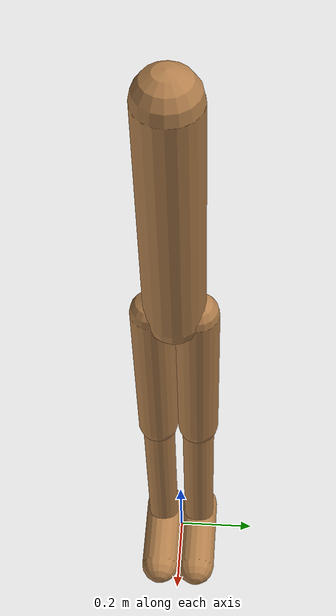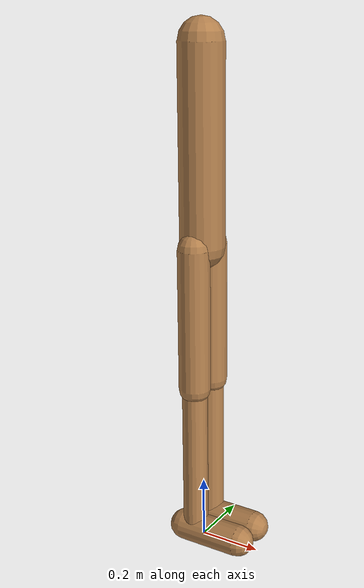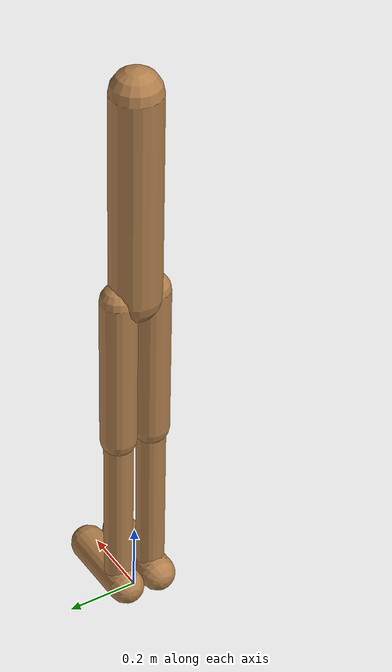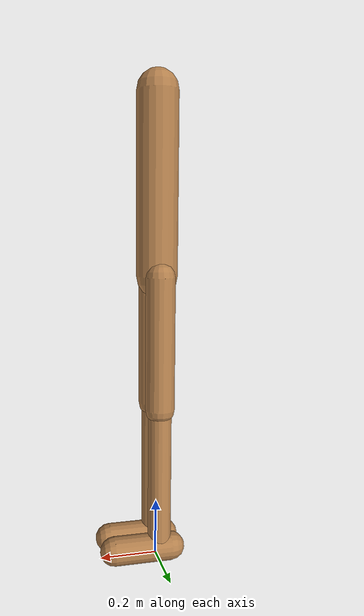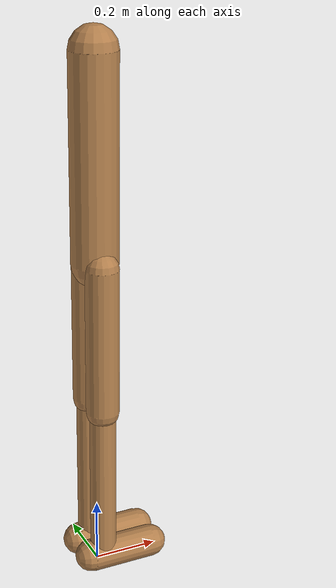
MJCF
<mujoco model="planar walker">
  <compiler angle="radian"/>

  <asset>
    <material name="self" rgba=".7 .5 .3 1"/>
  </asset>

  <default>
    <joint damping=".1" armature="0.01" limited="true" solimplimit="0 .99 .01"/>
    <geom contype="1" conaffinity="0" friction=".7 .1 .1"/>
    <motor ctrlrange="-1 1" ctrllimited="true"/>
    <site size="0.01"/>
    <default class="walker">
      <geom material="self" type="capsule"/>
      <joint axis="0 -1 0"/>
    </default>
    <default class="rangefinder">
      <site type="capsule" size=".05 .5" rgba="1 0 0 .4" group="4"/>
    </default>
  </default>

  <worldbody>
    <camera name="sideon" pos="0 -3 3" euler="0.7854 0 0" mode="trackcom"/>
    <camera name="float_far"  pos="-4 0 2" xyaxes="0 -1 0 .5 0 1" mode="trackcom" fovy="90"/>
    <body name="torso" pos="0 0 1.3" childclass="walker">

      <camera name="floating"  pos="-2 0 1" xyaxes="0 -1 0 .5 0 1" mode="trackcom" fovy="90"/>
      <camera name="egocentric"  pos=".07 0 .2" xyaxes="0 -1 0 0 0 1" fovy="90"/>

      <site name="torso_touch" type="box" size="0.08 0.08 0.31" rgba="0 0 1 1" group="4"/>
      <geom name="torso" size="0.07 0.3"/>
      <site name="torso_site" size="0.05" rgba="1 0 0 1"/>

      <site name="rf_xp" class="rangefinder" pos="0.07 0 0.2" zaxis="1 0 0"/>
      <site name="rf_xpd_10" class="rangefinder" pos="0.07 0 0.2" xyaxes="-1 0 -5.6713 0 1 0"/>  <!-- 10 degree -->
      <site name="rf_xpd_20" class="rangefinder" pos="0.07 0 0.2" xyaxes="-1 0 -2.7475 0 1 0"/>  <!-- 20 degree -->
      <site name="rf_xpd_30" class="rangefinder" pos="0.07 0 0.2" xyaxes="-1 0 -1.7321 0 1 0"/>  <!-- 30 degree -->
      <site name="rf_xpd_40" class="rangefinder" pos="0.07 0 0.2" xyaxes="-1 0 -1.1918 0 1 0"/>  <!-- 40 degree -->
      <site name="rf_xpd_50" class="rangefinder" pos="0.07 0 0.2" xyaxes="-1 0 -0.8391 0 1 0"/>  <!-- 50 degree -->
      <site name="rf_xpd_60" class="rangefinder" pos="0.07 0 0.2" xyaxes="-1 0 -0.5774 0 1 0"/>  <!-- 60 degree -->

      <body name="right_thigh" pos="0 -.05 -0.3">
        <joint name="right_hip" range="-0.34907 1.74533"/>  <!-- range = [-20 deg, 100 deg] -->
        <geom name="right_thigh" pos="0 0 -0.225" size="0.05 0.225"/>
        <body name="right_leg" pos="0 0 -0.7">
          <joint name="right_knee" pos="0 0 0.25" range="-2.61799 0"/>  <!-- range = [-150 deg, 0 deg] -->
          <geom name="right_leg" size="0.04 0.25"/>
          <body name="right_foot" pos="0.06 0 -0.25">
            <joint name="right_ankle" pos="-0.06 0 0" range="-0.78540 0.78540"/>  <!-- range = [-45 deg, 45 deg] -->
            <geom name="right_foot" zaxis="1 0 0" size="0.05 0.1"/>
          </body>
        </body>
      </body>
      <body name="left_thigh" pos="0 .05 -0.3" >
        <joint name="left_hip" range="-0.34907 1.74533"/>  <!-- range = [-20 deg, 100 deg] -->
        <geom name="left_thigh" pos="0 0 -0.225" size="0.05 0.225"/>
        <body name="left_leg" pos="0 0 -0.7">
          <joint name="left_knee" pos="0 0 0.25" range="-2.61799 0"/>  <!-- range = [-150 deg, 0 deg] -->
          <geom name="left_leg" size="0.04 0.25"/>
          <body name="left_foot" pos="0.06 0 -0.25">
            <joint name="left_ankle" pos="-0.06 0 0" range="-0.78540 0.78540"/>  <!-- range = [-45 deg, 45 deg] -->
            <geom name="left_foot" zaxis="1 0 0" size="0.05 0.1"/>
          </body>
        </body>
      </body>
    </body>
  </worldbody>

  <sensor>
    <subtreelinvel name="torso_subtreelinvel" body="torso"/>
    <touch name="torso_touch" site="torso_touch"/>
    <velocimeter name="torso_vel" site="torso_site"/>
    <gyro name="torso_gyro" site="torso_site"/>
    <accelerometer name="torso_accel" site="torso_site"/>
    <rangefinder name="rf_xp" site="rf_xp"/>
    <rangefinder name="rf_xpd_10" site="rf_xpd_10"/>
    <rangefinder name="rf_xpd_20" site="rf_xpd_20"/>
    <rangefinder name="rf_xpd_30" site="rf_xpd_30"/>
    <rangefinder name="rf_xpd_40" site="rf_xpd_40"/>
    <rangefinder name="rf_xpd_50" site="rf_xpd_50"/>
    <rangefinder name="rf_xpd_60" site="rf_xpd_60"/>
  </sensor>

  <actuator>
    <motor name="right_hip" joint="right_hip" gear="100"/>
    <motor name="right_knee" joint="right_knee" gear="50"/>
    <motor name="right_ankle" joint="right_ankle" gear="20"/>
    <motor name="left_hip" joint="left_hip" gear="100"/>
    <motor name="left_knee" joint="left_knee" gear="50"/>
    <motor name="left_ankle" joint="left_ankle" gear="20"/>
  </actuator>
</mujoco>
